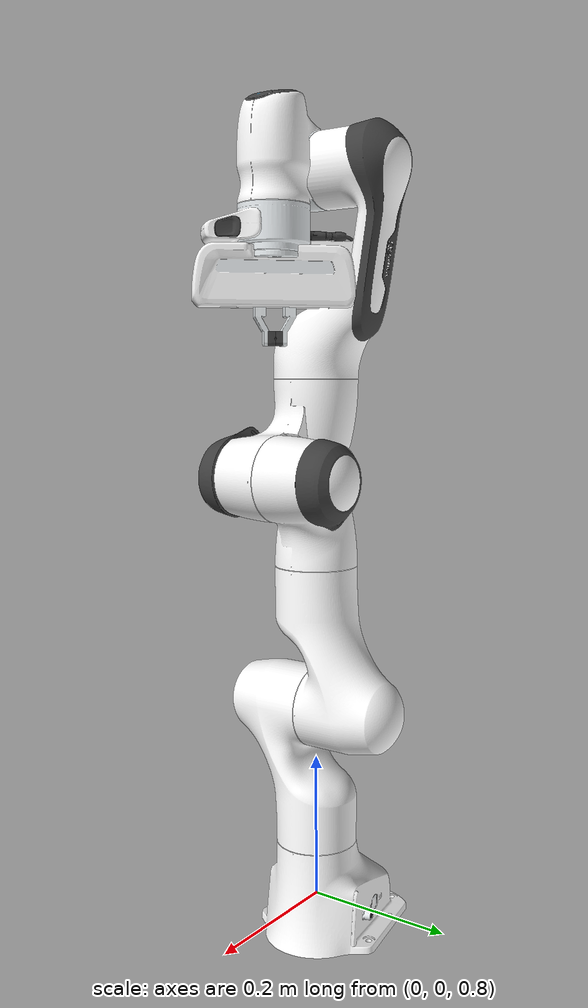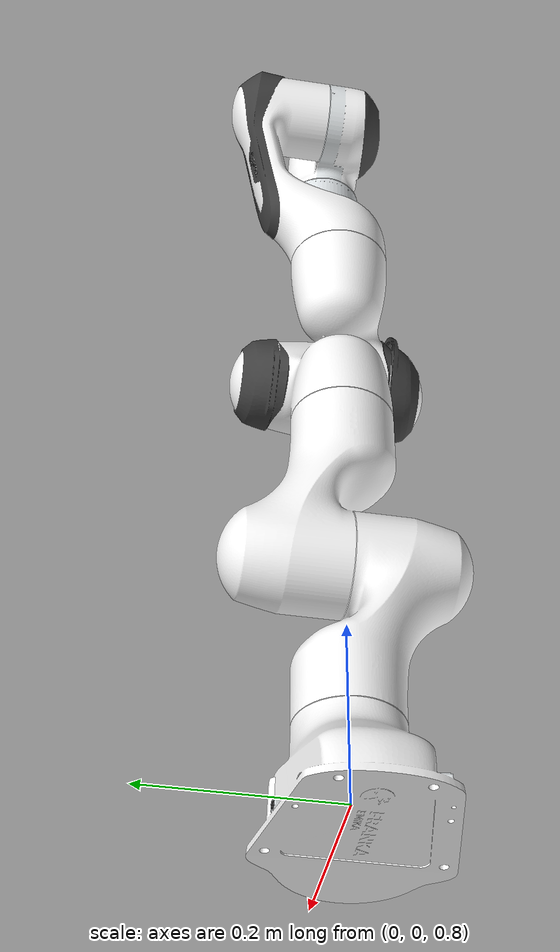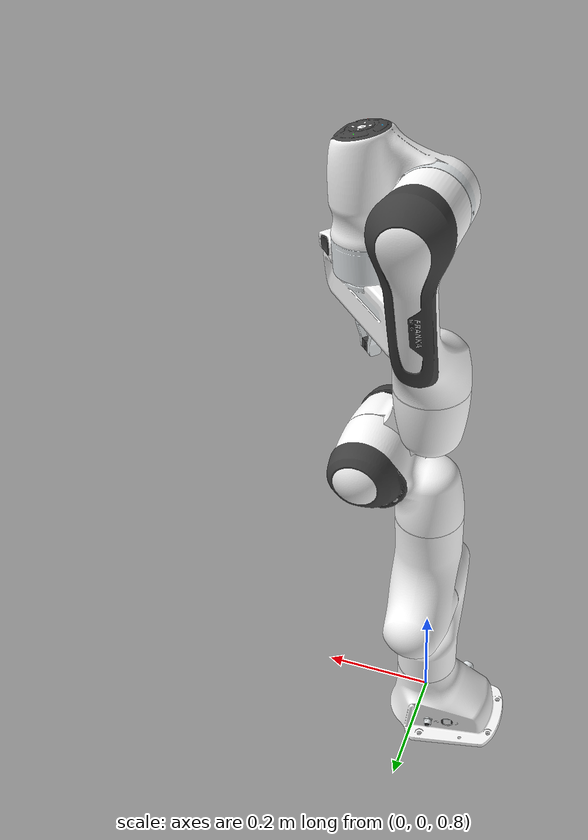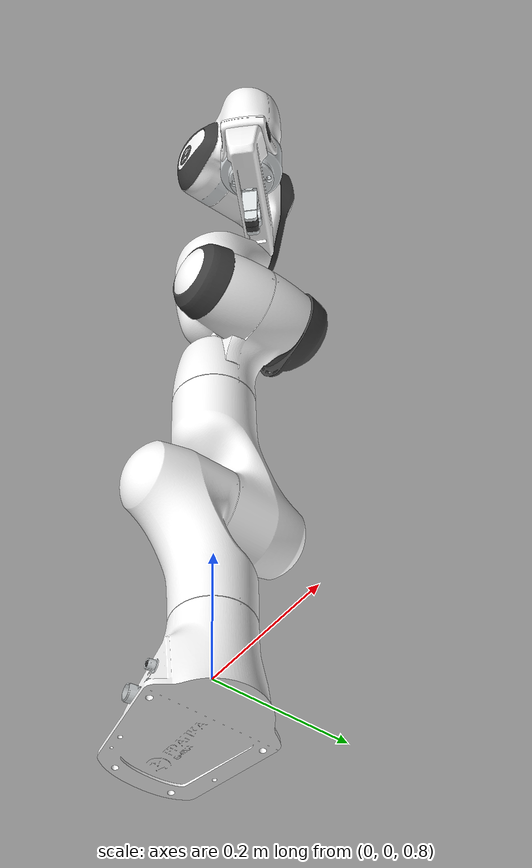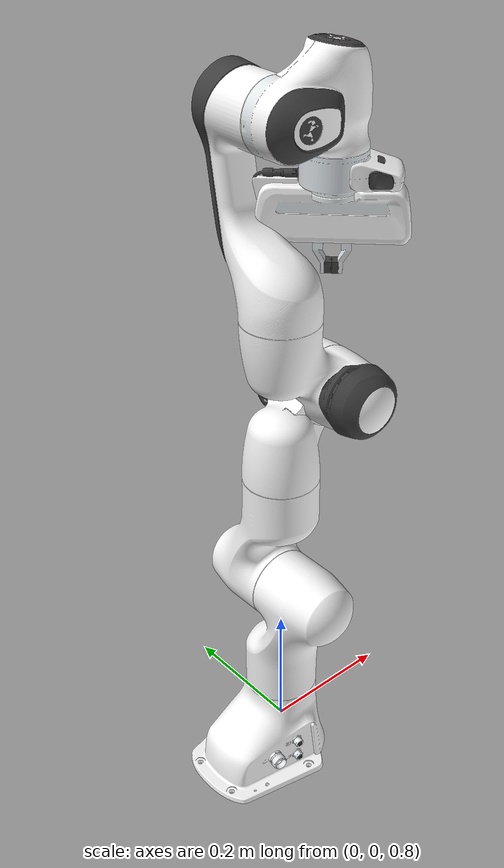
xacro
<?xml version="1.0"?>
<robot name="panda" xmlns:xacro="http://www.ros.org/wiki/xacro">

  <!-- controllers.yaml mutlak yolunu launch'tan geçireceğiz -->
  <xacro:arg name="controllers_yaml"
           default="$(optenv CONTROLLERS_YAML $(find-pkg-share panda_yolo_pickplace)/config/controllers.yaml)"/>

  <!-- world → panda_link0 sabit bağlantı (masa tepe ≈ 0.74 m) -->
  <link name="world"/>
  <joint name="world_fixed" type="fixed">
    <parent link="world"/>
    <child link="panda_link0"/>
    <origin xyz="0 0 0.74" rpy="0 0 0"/>
  </joint>

  <link name="panda_link0">
    <visual>
      <geometry>
        <mesh filename="package://moveit_resources_panda_description/meshes/visual/link0.dae"/>
      </geometry>
    </visual>
    <collision>
      <geometry>
        <mesh filename="package://moveit_resources_panda_description/meshes/collision/link0.stl"/>
      </geometry>
    </collision>
    <inertial>
      <origin xyz="-0.041018 -0.00014 0.049974" rpy="0 0 0"/>
      <mass value="0.629769"/>
      <inertia ixx="0.00315" iyy="0.00388" izz="0.004285" ixy="8.2904E-7" ixz="0.00015" iyz="8.2299E-6"/>
    </inertial>
  </link>

  <link name="panda_link1">
    <visual>
      <geometry>
        <mesh filename="package://moveit_resources_panda_description/meshes/visual/link1.dae"/>
      </geometry>
    </visual>
    <collision>
      <geometry>
        <mesh filename="package://moveit_resources_panda_description/meshes/collision/link1.stl"/>
      </geometry>
    </collision>
    <inertial>
      <origin xyz="0.003875 0.002081 -0.04762" rpy="0 0 0"/>
      <mass value="4.970684"/>
      <inertia ixx="0.70337" iyy="0.70661" izz="0.009117" ixy="-0.000139" ixz="0.006772" iyz="0.019169"/>
    </inertial>
  </link>

  <joint name="panda_joint1" type="revolute">
    <safety_controller k_position="100.0" k_velocity="40.0" soft_lower_limit="-2.8973" soft_upper_limit="2.8973"/>
    <origin rpy="0 0 0" xyz="0 0 0.333"/>
    <parent link="panda_link0"/>
    <child link="panda_link1"/>
    <axis xyz="0 0 1"/>
    <limit effort="87" lower="-2.9671" upper="2.9671" velocity="2.3925"/>
    <dynamics D="1" K="7000" damping="0.003" friction="0.0" mu_coulomb="0" mu_viscous="16"/>
  </joint>

  <link name="panda_link2">
    <visual>
      <geometry>
        <mesh filename="package://moveit_resources_panda_description/meshes/visual/link2.dae"/>
      </geometry>
    </visual>
    <collision>
      <geometry>
        <mesh filename="package://moveit_resources_panda_description/meshes/collision/link2.stl"/>
      </geometry>
    </collision>
    <inertial>
      <origin xyz="-0.003141 -0.02872 0.003495" rpy="0 0 0"/>
      <mass value="0.646926"/>
      <inertia ixx="0.007962" iyy="0.02811" izz="0.025995" ixy="-0.003925" ixz="0.010254" iyz="0.000704"/>
    </inertial>
  </link>

  <joint name="panda_joint2" type="revolute">
    <safety_controller k_position="100.0" k_velocity="40.0" soft_lower_limit="-1.7628" soft_upper_limit="1.7628"/>
    <origin rpy="-1.57079632679 0 0" xyz="0 0 0"/>
    <parent link="panda_link1"/>
    <child link="panda_link2"/>
    <axis xyz="0 0 1"/>
    <limit effort="87" lower="-1.8326" upper="1.8326" velocity="2.3925"/>
    <dynamics D="1" K="7000" damping="0.003" friction="0.0" mu_coulomb="0" mu_viscous="16"/>
  </joint>

  <link name="panda_link3">
    <visual>
      <geometry>
        <mesh filename="package://moveit_resources_panda_description/meshes/visual/link3.dae"/>
      </geometry>
    </visual>
    <collision>
      <geometry>
        <mesh filename="package://moveit_resources_panda_description/meshes/collision/link3.stl"/>
      </geometry>
    </collision>
    <inertial>
      <origin xyz="0.027518 0.039252 -0.066502" rpy="0 0 0"/>
      <mass value="3.228604"/>
      <inertia ixx="0.037242" iyy="0.036155" izz="0.01083" ixy="-0.004761" ixz="-0.011396" iyz="-0.012805"/>
    </inertial>
  </link>

  <joint name="panda_joint3" type="revolute">
    <safety_controller k_position="100.0" k_velocity="40.0" soft_lower_limit="-2.8973" soft_upper_limit="2.8973"/>
    <origin rpy="1.57079632679 0 0" xyz="0 -0.316 0"/>
    <parent link="panda_link2"/>
    <child link="panda_link3"/>
    <axis xyz="0 0 1"/>
    <limit effort="87" lower="-2.9671" upper="2.9671" velocity="2.3925"/>
    <dynamics D="1" K="7000" damping="0.003" friction="0.0" mu_coulomb="0" mu_viscous="16"/>
  </joint>

  <link name="panda_link4">
    <visual>
      <geometry>
        <mesh filename="package://moveit_resources_panda_description/meshes/visual/link4.dae"/>
      </geometry>
    </visual>
    <collision>
      <geometry>
        <mesh filename="package://moveit_resources_panda_description/meshes/collision/link4.stl"/>
      </geometry>
    </collision>
    <inertial>
      <origin xyz="-0.05317 0.104419 0.027454" rpy="0 0 0"/>
      <mass value="3.587895"/>
      <inertia ixx="0.025853" iyy="0.019552" izz="0.028323" ixy="0.007796" ixz="-0.001332" iyz="0.008641"/>
    </inertial>
  </link>

  <joint name="panda_joint4" type="revolute">
    <safety_controller k_position="100.0" k_velocity="40.0" soft_lower_limit="-3.0718" soft_upper_limit="0.0175"/>
    <origin rpy="1.57079632679 0 0" xyz="0.0825 0 0"/>
    <parent link="panda_link3"/>
    <child link="panda_link4"/>
    <axis xyz="0 0 1"/>
    <limit effort="87" lower="-3.1416" upper="0.0873" velocity="2.3925"/>
    <dynamics D="1" K="7000" damping="0.003" friction="0.0" mu_coulomb="0" mu_viscous="16"/>
  </joint>

  <link name="panda_link5">
    <visual>
      <geometry>
        <mesh filename="package://moveit_resources_panda_description/meshes/visual/link5.dae"/>
      </geometry>
    </visual>
    <collision>
      <geometry>
        <mesh filename="package://moveit_resources_panda_description/meshes/collision/link5.stl"/>
      </geometry>
    </collision>
    <inertial>
      <origin xyz="-0.011953 0.041065 -0.038437" rpy="0 0 0"/>
      <mass value="1.225946"/>
      <inertia ixx="0.035549" iyy="0.029474" izz="0.008627" ixy="-0.002117" ixz="-0.004037" iyz="0.000229"/>
    </inertial>
  </link>

  <joint name="panda_joint5" type="revolute">
    <safety_controller k_position="100.0" k_velocity="40.0" soft_lower_limit="-2.8973" soft_upper_limit="2.8973"/>
    <origin rpy="-1.57079632679 0 0" xyz="-0.0825 0.384 0"/>
    <parent link="panda_link4"/>
    <child link="panda_link5"/>
    <axis xyz="0 0 1"/>
    <limit effort="12" lower="-2.9671" upper="2.9671" velocity="2.8710"/>
    <dynamics D="1" K="7000" damping="0.003" friction="0.0" mu_coulomb="0" mu_viscous="16"/>
  </joint>

  <link name="panda_link6">
    <visual>
      <geometry>
        <mesh filename="package://moveit_resources_panda_description/meshes/visual/link6.dae"/>
      </geometry>
    </visual>
    <collision>
      <geometry>
        <mesh filename="package://moveit_resources_panda_description/meshes/collision/link6.stl"/>
      </geometry>
    </collision>
    <inertial>
      <origin xyz="0.060149 -0.014117 -0.010517" rpy="0 0 0"/>
      <mass value="1.666555"/>
      <inertia ixx="0.001964" iyy="0.004354" izz="0.005433" ixy="0.000109" ixz="-0.001158" iyz="0.000341"/>
    </inertial>
  </link>

  <joint name="panda_joint6" type="revolute">
    <safety_controller k_position="100.0" k_velocity="40.0" soft_lower_limit="-0.0175" soft_upper_limit="3.7525"/>
    <origin rpy="1.57079632679 0 0" xyz="0 0 0"/>
    <parent link="panda_link5"/>
    <child link="panda_link6"/>
    <axis xyz="0 0 1"/>
    <limit effort="12" lower="-0.0873" upper="3.8223" velocity="2.8710"/>
    <dynamics D="1" K="7000" damping="0.003" friction="0.0" mu_coulomb="0" mu_viscous="16"/>
  </joint>

  <link name="panda_link7">
    <visual>
      <geometry>
        <mesh filename="package://moveit_resources_panda_description/meshes/visual/link7.dae"/>
      </geometry>
    </visual>
    <collision>
      <geometry>
        <mesh filename="package://moveit_resources_panda_description/meshes/collision/link7.stl"/>
      </geometry>
    </collision>
    <inertial>
      <origin xyz="0.010517 -0.004252 0.061597" rpy="0 0 0"/>
      <mass value="0.735522"/>
      <inertia ixx="0.012516" iyy="0.010027" izz="0.004815" ixy="-0.000428" ixz="-0.00119" iyz="-0.000741"/>
    </inertial>
  </link>

  <joint name="panda_joint7" type="revolute">
    <safety_controller k_position="100.0" k_velocity="40.0" soft_lower_limit="-2.8973" soft_upper_limit="2.8973"/>
    <origin rpy="1.57079632679 0 0" xyz="0.088 0 0"/>
    <parent link="panda_link6"/>
    <child link="panda_link7"/>
    <axis xyz="0 0 1"/>
    <limit effort="12" lower="-2.9671" upper="2.9671" velocity="2.8710"/>
    <dynamics D="1" K="7000" damping="0.003" friction="0.0" mu_coulomb="0" mu_viscous="16"/>
  </joint>

  <link name="panda_link8"/>

  <joint name="panda_joint8" type="fixed">
    <origin rpy="0 0 0" xyz="0 0 0.107"/>
    <parent link="panda_link7"/>
    <child link="panda_link8"/>
    <axis xyz="0 0 0"/>
  </joint>

  <joint name="panda_hand_joint" type="fixed">
    <parent link="panda_link8"/>
    <child link="panda_hand"/>
    <origin rpy="0 0 -0.785398163397" xyz="0 0 0"/>
  </joint>

  <link name="panda_hand">
    <visual>
      <geometry>
        <mesh filename="package://moveit_resources_panda_description/meshes/visual/hand.dae"/>
      </geometry>
    </visual>
    <collision>
      <geometry>
        <mesh filename="package://moveit_resources_panda_description/meshes/collision/hand.stl"/>
      </geometry>
    </collision>
    <inertial>
      <origin xyz="-0.01 0 0.03" rpy="0 0 0"/>
      <mass value="0.73"/>
      <inertia ixx="0.001" iyy="0.0025" izz="0.0017" ixy="0" ixz="0" iyz="0"/>
    </inertial>
  </link>

  <link name="panda_leftfinger">
    <visual>
      <geometry>
        <mesh filename="package://moveit_resources_panda_description/meshes/visual/finger.dae"/>
      </geometry>
    </visual>
    <collision>
      <geometry>
        <mesh filename="package://moveit_resources_panda_description/meshes/collision/finger.stl"/>
      </geometry>
    </collision>
    <inertial>
      <origin xyz="0 0 0" rpy="0 0 0"/>
      <mass value="0.015"/>
      <inertia ixx="2.375E-6" iyy="2.375E-6" izz="7.5E-7" ixy="0" ixz="0" iyz="0"/>
    </inertial>
  </link>

  <link name="panda_rightfinger">
    <visual>
      <origin rpy="0 0 3.14159265359" xyz="0 0 0"/>
      <geometry>
        <mesh filename="package://moveit_resources_panda_description/meshes/visual/finger.dae"/>
      </geometry>
    </visual>
    <collision>
      <origin rpy="0 0 3.14159265359" xyz="0 0 0"/>
      <geometry>
        <mesh filename="package://moveit_resources_panda_description/meshes/collision/finger.stl"/>
      </geometry>
    </collision>
    <inertial>
      <origin xyz="0 0 0" rpy="0 0 0"/>
      <mass value="0.015"/>
      <inertia ixx="2.375E-6" iyy="2.375E-6" izz="7.5E-7" ixy="0" ixz="0" iyz="0"/>
    </inertial>
  </link>

  <joint name="panda_finger_joint1" type="prismatic">
    <parent link="panda_hand"/>
    <child link="panda_leftfinger"/>
    <origin rpy="0 0 0" xyz="0 0 0.0584"/>
    <axis xyz="0 1 0"/>
    <limit effort="20" lower="0.0" upper="0.04" velocity="0.2"/>
    <dynamics damping="0.3"/>
  </joint>

  <joint name="panda_finger_joint2" type="prismatic">
    <parent link="panda_hand"/>
    <child link="panda_rightfinger"/>
    <origin rpy="0 0 0" xyz="0 0 0.0584"/>
    <axis xyz="0 -1 0"/>
    <limit effort="20" lower="0.0" upper="0.04" velocity="0.2"/>
    <mimic joint="panda_finger_joint1"/>
    <dynamics damping="0.3"/>
  </joint>

  <!-- ROS 2 Control (gz-sim) için donanım + arayüzler -->
  <ros2_control name="PandaSystem" type="system">
    <hardware>
      <plugin>gz_ros2_control/GazeboSimSystem</plugin>
    </hardware>

    <!-- Sadece kol eklemleri; parmaklar hariç -->
    <joint name="panda_joint1">
      <command_interface name="position"/>
      <state_interface   name="position"/>
      <state_interface   name="velocity"/>
    </joint>
    <joint name="panda_joint2">
      <command_interface name="position"/>
      <state_interface   name="position"/>
      <state_interface   name="velocity"/>
    </joint>
    <joint name="panda_joint3">
      <command_interface name="position"/>
      <state_interface   name="position"/>
      <state_interface   name="velocity"/>
    </joint>
    <joint name="panda_joint4">
      <command_interface name="position"/>
      <state_interface   name="position"/>
      <state_interface   name="velocity"/>
    </joint>
    <joint name="panda_joint5">
      <command_interface name="position"/>
      <state_interface   name="position"/>
      <state_interface   name="velocity"/>
    </joint>
    <joint name="panda_joint6">
      <command_interface name="position"/>
      <state_interface   name="position"/>
      <state_interface   name="velocity"/>
    </joint>
    <joint name="panda_joint7">
      <command_interface name="position"/>
      <state_interface   name="position"/>
      <state_interface   name="velocity"/>
    </joint>
  </ros2_control>

  <!-- Sadece panda için gravity kapatma -->
  <gazebo reference="panda_link0"><gravity>0</gravity></gazebo>
  <gazebo reference="panda_link1"><gravity>0</gravity></gazebo>
  <gazebo reference="panda_link2"><gravity>0</gravity></gazebo>
  <gazebo reference="panda_link3"><gravity>0</gravity></gazebo>
  <gazebo reference="panda_link4"><gravity>0</gravity></gazebo>
  <gazebo reference="panda_link5"><gravity>0</gravity></gazebo>
  <gazebo reference="panda_link6"><gravity>0</gravity></gazebo>
  <gazebo reference="panda_link7"><gravity>0</gravity></gazebo>
  <gazebo reference="panda_link8"><gravity>0</gravity></gazebo>
  <gazebo reference="panda_hand"><gravity>0</gravity></gazebo>
  <gazebo reference="panda_finger_link1"><gravity>0</gravity></gazebo>
  <gazebo reference="panda_finger_link2"><gravity>0</gravity></gazebo>

  <!-- gz_ros2_control plugin (mutlak YAML yolu verilecek) -->
  <gazebo>
    <plugin name="gz_ros2_control::GazeboSimROS2ControlPlugin" filename="gz_ros2_control-system">
      <ros>
        <namespace>/panda</namespace>
      </ros>
      <parameters>$(arg controllers_yaml)</parameters>
    </plugin>
  </gazebo>
</robot>
